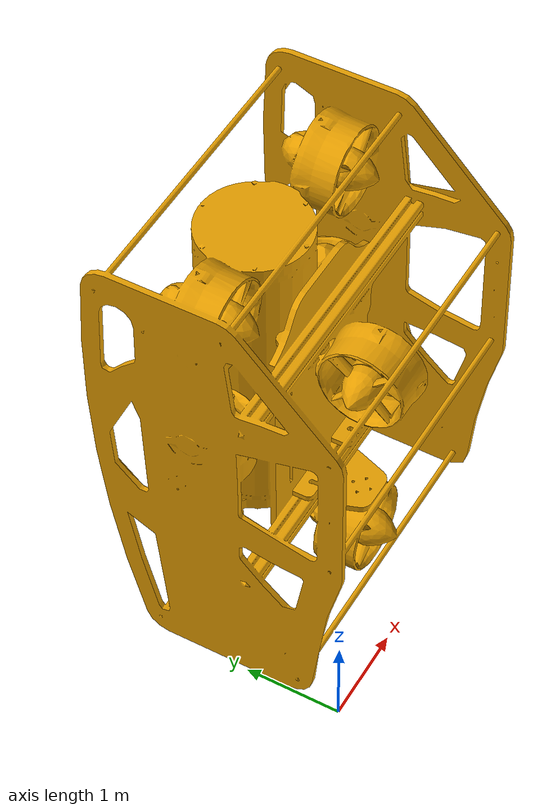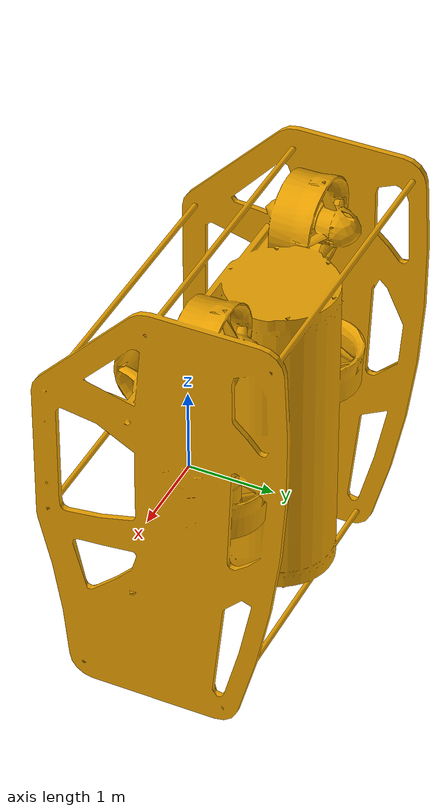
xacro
<?xml version="1.0"?>
<robot name="enigma" xmlns:xacro="http://www.ros.org/wiki/xacro" >
  <xacro:arg name="debug" default="0"/>
  <xacro:arg name="namespace" default="enigma"/>
  <!-- Include the ROV macro file -->
  <xacro:include filename="$(find enigma_description)/urdf/base.xacro"/>
  <xacro:include filename="$(find enigma_description)/urdf/gazebo.xacro"/>

  <!-- Create the enigma -->
  <xacro:enigma_base namespace="$(arg namespace)">
    <!-- The underwater object plugin is given as an input block parameter to
     allow the addition of external models of manipulator units -->
    <gazebo>
      <plugin name="uuv_plugin" filename="libunderwater_object_ros_plugin.so">
        <fluid_density>1028.0</fluid_density>
        <flow_velocity_topic>hydrodynamics/current_velocity</flow_velocity_topic>
        <debug>$(arg debug)</debug>
        <!-- Adding the hydrodynamic and hydrostatic parameters for the vehicle-->
        <xacro:enigma_hydro_model namespace="$(arg namespace)"/>
      </plugin>
    </gazebo>
  </xacro:enigma_base>

  <gazebo>
    <plugin name="joint_state_publisher" filename="libjoint_state_publisher.so">
      <robotNamespace>$(arg namespace)</robotNamespace>
      <updateRate>50</updateRate>
    </plugin>
  </gazebo>
  <!-- Joint state publisher plugin -->

</robot>

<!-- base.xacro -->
<robot xmlns:xacro="http://www.ros.org/wiki/xacro">
  <!-- Loading some constants -->
  <xacro:include filename="$(find uuv_descriptions)/models/common/urdf/common.urdf.xacro"/>
  <!-- Loading file with sensor macros -->
  <xacro:include filename="$(find uuv_sensor_plugins_ros)/urdf/sensor_snippets.xacro"/>
  <!-- Loading vehicle's specific macros -->

  <!--
    Vehicle's parameters (remember to enter the model parameters below)
  -->

  <xacro:property name="mass" value="1862.87"/>
  <!-- Center of gravity -->
  <xacro:property name="cog" value="0 0 0"/>
  <!-- Fluid density -->
  <xacro:property name="rho" value="1028"/>

  <xacro:property name="visual_mesh_file" value="file://$(find enigma_description)/meshes/bluerov.dae"/>

  <!-- Vehicle macro -->
  <xacro:macro name="enigma_base" params="namespace *gazebo">

      <!-- Rigid body description of the base link -->
      <link name="${namespace}/base_link">
        <!--
          Be careful to setup the coefficients for the inertial tensor,
          otherwise your model will become unstable on Gazebo
        -->
        <inertial>
          <mass value="${mass}" />
          <origin xyz="${cog}" rpy="0 0 0"/>
          <inertia ixx="525.39" ixy="1.44" ixz="33.41" iyy="794.20" iyz="2.6" izz="691.23"/>
        </inertial>

        <visual>
          <origin xyz="0 0 0" rpy="0 0 0"/>
          <geometry>
            <mesh filename="${visual_mesh_file}" scale="0.01 0.01 0.01" />
          </geometry>
        </visual>

        <collision>
          <origin xyz="0 0 0" rpy="0 0 0"/>
          <geometry>
            <mesh filename="${visual_mesh_file}" scale="0.1 0.1 0.1" />
          </geometry>
        </collision>
      </link>

    <gazebo reference="${namespace}/base_link">
      <selfCollide>false</selfCollide>
    </gazebo>

    <!-- Set up hydrodynamic plugin given as input parameter -->
    <xacro:insert_block name="gazebo"/>

    <!-- Include the thruster modules -->

    <!-- Include the sensor modules -->

  </xacro:macro>

</robot>
